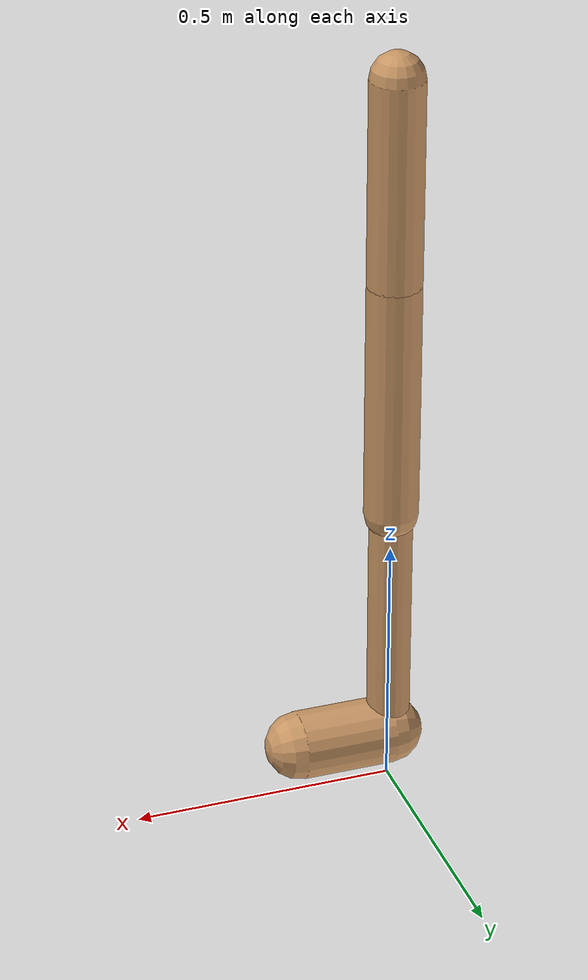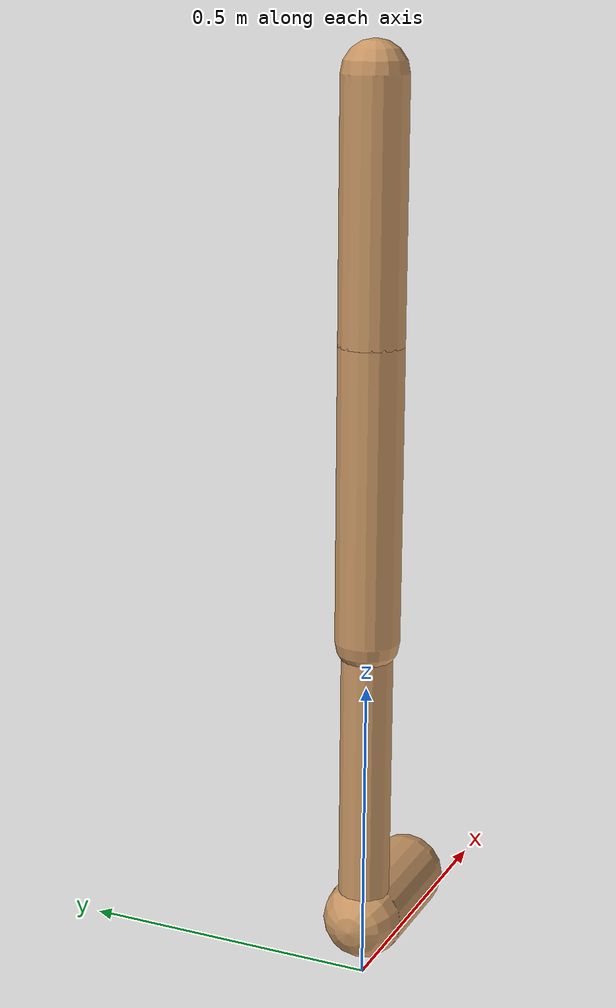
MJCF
<mujoco model="walker2d">
  <compiler angle="degree" coordinate="global" inertiafromgeom="true" />
  <default>
    <joint armature="0.01" damping=".1" limited="true" />
    <geom conaffinity="0" condim="3" contype="1" density="1000" friction="0.8 .1 .1" rgba="0.8 0.6 .4 1" />
  </default>
  <option integrator="RK4" timestep="0.002" />
  <worldbody>

    <body name="torso" pos="0 0 0.04242367284409">
      <joint armature="0" axis="1 0 0" damping="0" limited="false" name="ignorex" pos="0 0 0" stiffness="0" type="slide" />
      <joint armature="0" axis="0 0 1" damping="0" limited="false" name="ignorez" pos="0 0 0" ref="1.25" stiffness="0" type="slide" />
      <joint armature="0" axis="0 1 0" damping="0" limited="false" name="ignorey" pos="0 0 0" stiffness="0" type="hinge" />
      <geom fromto="0 0 1.45 0 0 1.05" name="torso_geom" size="0.051460394879475437" type="capsule" />
      <body name="thigh">
        <joint axis="0 -1 0" name="thigh_joint" pos="0 0 1.05" range="-150 0" type="hinge" />
        <geom fromto="0.0 0.0 1.05 0.0 0.0 0.5799045760212205" name="thigh_geom" size="0.0515480311497213" type="capsule" />
        <body name="leg" pos="0.0 0.0 -0.020095423978779503">
          <joint axis="0 -1 0" name="leg_joint" pos="0 0 0.6" range="-150 0" type="hinge" />
          <geom fromto="0.0 0.0 0.6 0.0 0.0 0.07767175113468948" name="leg_geom" size="0.041238424919777035" type="capsule" />
          <body name="foot" pos="0.0 0.0 -0.022328248865310527">
            <joint axis="0 -1 0" name="foot_joint" pos="0 0 0.1" range="-45 45" type="hinge" />
            <geom fromto="0.0 0.0 0.1 0.18025338535480917 0.0 0.1" name="foot_geom" size="0.06537521952877746" type="capsule" />
          </body>
        </body>
      </body>

      <body name="thigh_left">
        <joint axis="0 -1 0" name="thigh_left_joint" pos="0 0 1.05" range="-150 0" type="hinge" />
        <geom fromto="0.0 0.0 1.05 0.0 0.0 0.5799045760212205" name="thigh_left_geom" rgba=".7 .3 .6 1" size="0.0515480311497213" type="capsule" />
        <body name="leg_left" pos="0.0 0.0 -0.020095423978779503">
          <joint axis="0 -1 0" name="leg_left_joint" pos="0 0 0.6" range="-150 0" type="hinge" />
          <geom fromto="0.0 0.0 0.6 0.0 0.0 0.07767175113468948" name="leg_left_geom" rgba=".7 .3 .6 1" size="0.041238424919777035" type="capsule" />
          <body name="foot_left" pos="0.0 0.0 -0.022328248865310527">
            <joint axis="0 -1 0" name="foot_left_joint" pos="0 0 0.1" range="-45 45" type="hinge" />
            <geom fromto="0.0 0.0 0.1 0.18025338535480917 0.0 0.1" name="foot_left_geom" rgba=".7 .3 .6 1" size="0.06537521952877746" type="capsule" />
          </body>
        </body>
      </body>
    </body>
  </worldbody>
  <actuator>

    <motor ctrllimited="true" ctrlrange="-1.0 1.0" gear="100" joint="thigh_joint" />
    <motor ctrllimited="true" ctrlrange="-1.0 1.0" gear="100" joint="leg_joint" />
    <motor ctrllimited="true" ctrlrange="-1.0 1.0" gear="100" joint="foot_joint" />
    <motor ctrllimited="true" ctrlrange="-1.0 1.0" gear="100" joint="thigh_left_joint" />
    <motor ctrllimited="true" ctrlrange="-1.0 1.0" gear="100" joint="leg_left_joint" />
    <motor ctrllimited="true" ctrlrange="-1.0 1.0" gear="100" joint="foot_left_joint" />

  </actuator>
</mujoco>
